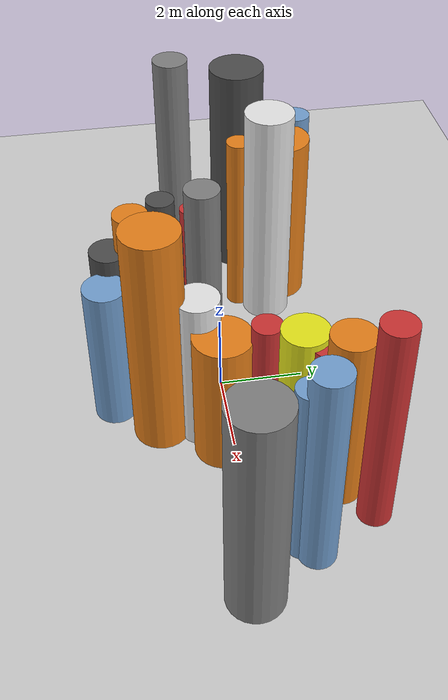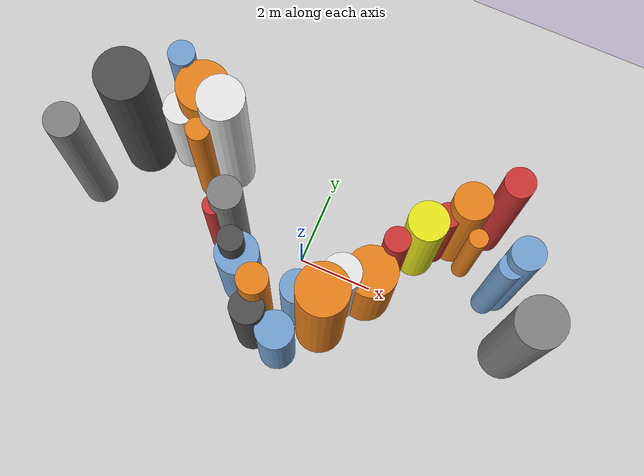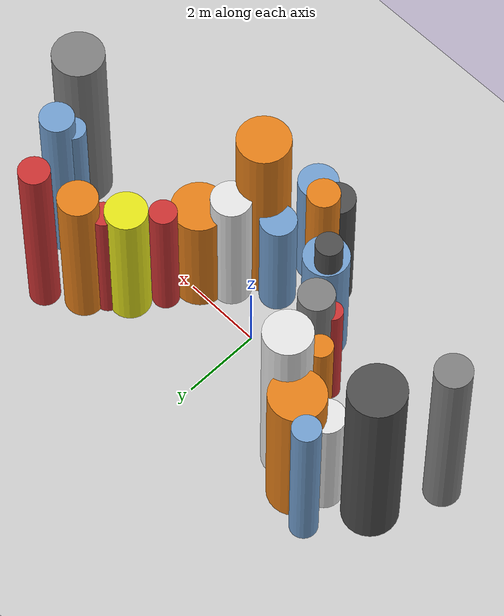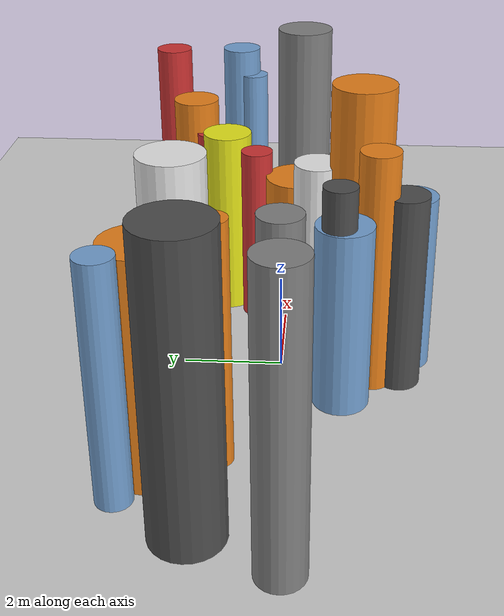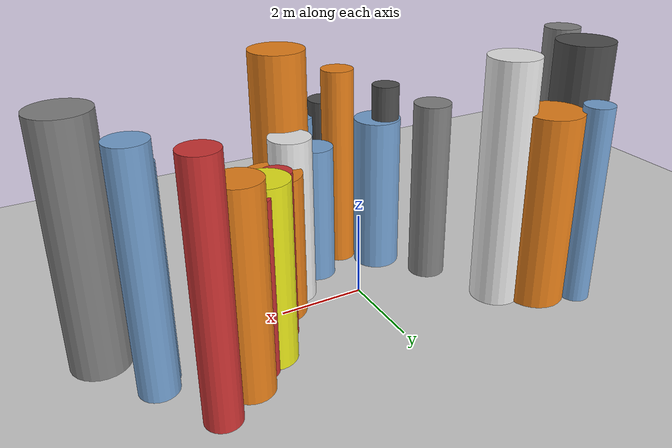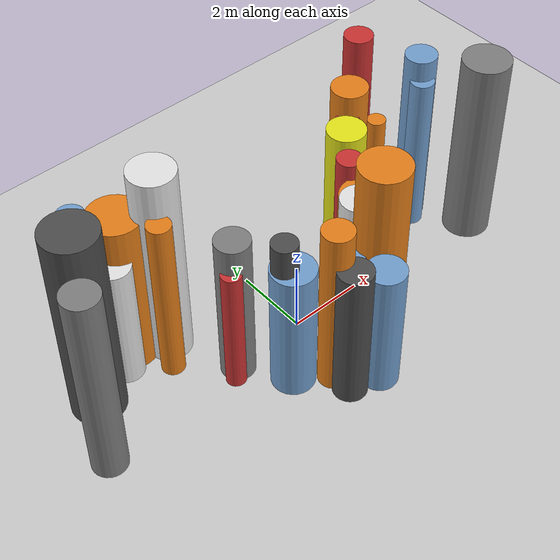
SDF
<?xml version='1.0'?>
<sdf version='1.6'>
  <world name='routeA_rl_v1__dense_recovery__rl_val__s_turn_multi_obstacle__000045'>
    <!-- Sun light -->
    <light name='sun' type='directional'>
      <cast_shadows>1</cast_shadows>
      <pose>0 0 10 0 0 0</pose>
      <diffuse>0.8 0.8 0.8 1</diffuse>
      <specular>0.2 0.2 0.2 1</specular>
      <attenuation>
        <range>1000</range>
        <constant>0.9</constant>
        <linear>0.01</linear>
        <quadratic>0.001</quadratic>
      </attenuation>
      <direction>-0.5 0.1 -0.9</direction>
    </light>

    <!-- Ground plane -->
    <model name='ground_plane'>
      <static>1</static>
      <link name='link'>
        <collision name='collision'>
          <geometry>
            <plane>
              <normal>0 0 1</normal>
              <size>100 100</size>
            </plane>
          </geometry>
          <surface>
            <contact>
              <collide_bitmask>65535</collide_bitmask>
              <ode/>
            </contact>
            <friction>
              <ode>
                <mu>100</mu>
                <mu2>50</mu2>
              </ode>
              <torsional><ode/></torsional>
            </friction>
            <bounce/>
          </surface>
          <max_contacts>10</max_contacts>
        </collision>
        <visual name='visual'>
          <cast_shadows>0</cast_shadows>
          <geometry>
            <plane>
              <normal>0 0 1</normal>
              <size>100 100</size>
            </plane>
          </geometry>
          <material>
            <script>
              <uri>file://media/materials/scripts/gazebo.material</uri>
              <n>Gazebo/Grey</n>
            </script>
          </material>
        </visual>
      </link>
    </model>

    <!-- Environment -->
    <magnetic_field>6e-06 2.3e-05 -4.2e-05</magnetic_field>
    <atmosphere type='adiabatic'/>
    <physics name='default_physics' default='0' type='ode'>
      <gravity>0 0 -9.8</gravity>
      <max_step_size>0.004</max_step_size>
      <real_time_factor>1</real_time_factor>
      <real_time_update_rate>250</real_time_update_rate>
    </physics>
    <scene>
      <ambient>0.4 0.4 0.4 1</ambient>
      <background>0.7 0.7 0.7 1</background>
      <shadows>1</shadows>
    </scene>
    <wind/>
    <spherical_coordinates>
      <surface_model>EARTH_WGS84</surface_model>
      <latitude_deg>0</latitude_deg>
      <longitude_deg>0</longitude_deg>
      <elevation>0</elevation>
      <heading_deg>0</heading_deg>
    </spherical_coordinates>

    <!-- ============ OBSTACLES (28) ============ -->
    <model name='s_turn_obs_0'>
      <static>1</static>
      <link name='link'>
        <visual name='visual'>
          <geometry>
            <cylinder>
              <radius>0.4491</radius>
              <length>5.6632</length>
            </cylinder>
          </geometry>
          <material>
            <script>
              <n>Gazebo/Grey</n>
              <uri>file://media/materials/scripts/gazebo.material</uri>
            </script>
            <ambient>0.5 0.5 0.5 1</ambient>
          </material>
        </visual>
        <collision name='collision'>
          <geometry>
            <cylinder>
              <radius>0.4491</radius>
              <length>5.6632</length>
            </cylinder>
          </geometry>
          <max_contacts>10</max_contacts>
          <surface>
            <contact><ode/></contact>
            <bounce/>
            <friction>
              <ode><mu>1</mu><mu2>1</mu2></ode>
              <torsional><ode/></torsional>
            </friction>
          </surface>
        </collision>
      </link>
      <pose>-6.0000 -0.3088 2.8316 0 0 0.0000</pose>
    </model>

    <model name='s_turn_obs_1'>
      <static>1</static>
      <link name='link'>
        <visual name='visual'>
          <geometry>
            <cylinder>
              <radius>0.6870</radius>
              <length>5.7342</length>
            </cylinder>
          </geometry>
          <material>
            <script>
              <n>Gazebo/DarkGrey</n>
              <uri>file://media/materials/scripts/gazebo.material</uri>
            </script>
            <ambient>0.3 0.3 0.3 1</ambient>
          </material>
        </visual>
        <collision name='collision'>
          <geometry>
            <cylinder>
              <radius>0.6870</radius>
              <length>5.7342</length>
            </cylinder>
          </geometry>
          <max_contacts>10</max_contacts>
          <surface>
            <contact><ode/></contact>
            <bounce/>
            <friction>
              <ode><mu>1</mu><mu2>1</mu2></ode>
              <torsional><ode/></torsional>
            </friction>
          </surface>
        </collision>
      </link>
      <pose>-5.2000 1.2667 2.8671 0 0 0.0000</pose>
    </model>

    <model name='s_turn_obs_2'>
      <static>1</static>
      <link name='link'>
        <visual name='visual'>
          <geometry>
            <cylinder>
              <radius>0.3449</radius>
              <length>4.7241</length>
            </cylinder>
          </geometry>
          <material>
            <script>
              <n>Gazebo/Blue</n>
              <uri>file://media/materials/scripts/gazebo.material</uri>
            </script>
            <ambient>0.447 0.624 0.812 1</ambient>
          </material>
        </visual>
        <collision name='collision'>
          <geometry>
            <cylinder>
              <radius>0.3449</radius>
              <length>4.7241</length>
            </cylinder>
          </geometry>
          <max_contacts>10</max_contacts>
          <surface>
            <contact><ode/></contact>
            <bounce/>
            <friction>
              <ode><mu>1</mu><mu2>1</mu2></ode>
              <torsional><ode/></torsional>
            </friction>
          </surface>
        </collision>
      </link>
      <pose>-4.4000 2.6431 2.3621 0 0 0.0000</pose>
    </model>

    <model name='s_turn_obs_3'>
      <static>1</static>
      <link name='link'>
        <visual name='visual'>
          <geometry>
            <cylinder>
              <radius>0.6859</radius>
              <length>4.5709</length>
            </cylinder>
          </geometry>
          <material>
            <script>
              <n>Gazebo/Orange</n>
              <uri>file://media/materials/scripts/gazebo.material</uri>
            </script>
            <ambient>0.9 0.5 0.1 1</ambient>
          </material>
        </visual>
        <collision name='collision'>
          <geometry>
            <cylinder>
              <radius>0.6859</radius>
              <length>4.5709</length>
            </cylinder>
          </geometry>
          <max_contacts>10</max_contacts>
          <surface>
            <contact><ode/></contact>
            <bounce/>
            <friction>
              <ode><mu>1</mu><mu2>1</mu2></ode>
              <torsional><ode/></torsional>
            </friction>
          </surface>
        </collision>
      </link>
      <pose>-3.6000 2.1249 2.2855 0 0 0.0000</pose>
    </model>

    <model name='s_turn_obs_4'>
      <static>1</static>
      <link name='link'>
        <visual name='visual'>
          <geometry>
            <cylinder>
              <radius>0.5905</radius>
              <length>5.7748</length>
            </cylinder>
          </geometry>
          <material>
            <script>
              <n>Gazebo/White</n>
              <uri>file://media/materials/scripts/gazebo.material</uri>
            </script>
            <ambient>0.9 0.9 0.9 1</ambient>
          </material>
        </visual>
        <collision name='collision'>
          <geometry>
            <cylinder>
              <radius>0.5905</radius>
              <length>5.7748</length>
            </cylinder>
          </geometry>
          <max_contacts>10</max_contacts>
          <surface>
            <contact><ode/></contact>
            <bounce/>
            <friction>
              <ode><mu>1</mu><mu2>1</mu2></ode>
              <torsional><ode/></torsional>
            </friction>
          </surface>
        </collision>
      </link>
      <pose>-2.8000 1.6444 2.8874 0 0 0.0000</pose>
    </model>

    <model name='s_turn_obs_5'>
      <static>1</static>
      <link name='link'>
        <visual name='visual'>
          <geometry>
            <cylinder>
              <radius>0.4421</radius>
              <length>4.3849</length>
            </cylinder>
          </geometry>
          <material>
            <script>
              <n>Gazebo/Grey</n>
              <uri>file://media/materials/scripts/gazebo.material</uri>
            </script>
            <ambient>0.5 0.5 0.5 1</ambient>
          </material>
        </visual>
        <collision name='collision'>
          <geometry>
            <cylinder>
              <radius>0.4421</radius>
              <length>4.3849</length>
            </cylinder>
          </geometry>
          <max_contacts>10</max_contacts>
          <surface>
            <contact><ode/></contact>
            <bounce/>
            <friction>
              <ode><mu>1</mu><mu2>1</mu2></ode>
              <torsional><ode/></torsional>
            </friction>
          </surface>
        </collision>
      </link>
      <pose>-2.0000 -0.0876 2.1924 0 0 0.0000</pose>
    </model>

    <model name='s_turn_obs_6'>
      <static>1</static>
      <link name='link'>
        <visual name='visual'>
          <geometry>
            <cylinder>
              <radius>0.5623</radius>
              <length>3.8150</length>
            </cylinder>
          </geometry>
          <material>
            <script>
              <n>Gazebo/Blue</n>
              <uri>file://media/materials/scripts/gazebo.material</uri>
            </script>
            <ambient>0.447 0.624 0.812 1</ambient>
          </material>
        </visual>
        <collision name='collision'>
          <geometry>
            <cylinder>
              <radius>0.5623</radius>
              <length>3.8150</length>
            </cylinder>
          </geometry>
          <max_contacts>10</max_contacts>
          <surface>
            <contact><ode/></contact>
            <bounce/>
            <friction>
              <ode><mu>1</mu><mu2>1</mu2></ode>
              <torsional><ode/></torsional>
            </friction>
          </surface>
        </collision>
      </link>
      <pose>-1.2000 -1.2262 1.9075 0 0 0.0000</pose>
    </model>

    <model name='s_turn_obs_7'>
      <static>1</static>
      <link name='link'>
        <visual name='visual'>
          <geometry>
            <cylinder>
              <radius>0.4388</radius>
              <length>4.0978</length>
            </cylinder>
          </geometry>
          <material>
            <script>
              <n>Gazebo/DarkGrey</n>
              <uri>file://media/materials/scripts/gazebo.material</uri>
            </script>
            <ambient>0.3 0.3 0.3 1</ambient>
          </material>
        </visual>
        <collision name='collision'>
          <geometry>
            <cylinder>
              <radius>0.4388</radius>
              <length>4.0978</length>
            </cylinder>
          </geometry>
          <max_contacts>10</max_contacts>
          <surface>
            <contact><ode/></contact>
            <bounce/>
            <friction>
              <ode><mu>1</mu><mu2>1</mu2></ode>
              <torsional><ode/></torsional>
            </friction>
          </surface>
        </collision>
      </link>
      <pose>-0.4000 -2.3877 2.0489 0 0 0.0000</pose>
    </model>

    <model name='s_turn_obs_8'>
      <static>1</static>
      <link name='link'>
        <visual name='visual'>
          <geometry>
            <cylinder>
              <radius>0.4900</radius>
              <length>3.7256</length>
            </cylinder>
          </geometry>
          <material>
            <script>
              <n>Gazebo/Blue</n>
              <uri>file://media/materials/scripts/gazebo.material</uri>
            </script>
            <ambient>0.447 0.624 0.812 1</ambient>
          </material>
        </visual>
        <collision name='collision'>
          <geometry>
            <cylinder>
              <radius>0.4900</radius>
              <length>3.7256</length>
            </cylinder>
          </geometry>
          <max_contacts>10</max_contacts>
          <surface>
            <contact><ode/></contact>
            <bounce/>
            <friction>
              <ode><mu>1</mu><mu2>1</mu2></ode>
              <torsional><ode/></torsional>
            </friction>
          </surface>
        </collision>
      </link>
      <pose>0.4000 -2.5725 1.8628 0 0 0.0000</pose>
    </model>

    <model name='s_turn_obs_9'>
      <static>1</static>
      <link name='link'>
        <visual name='visual'>
          <geometry>
            <cylinder>
              <radius>0.6507</radius>
              <length>5.7081</length>
            </cylinder>
          </geometry>
          <material>
            <script>
              <n>Gazebo/Orange</n>
              <uri>file://media/materials/scripts/gazebo.material</uri>
            </script>
            <ambient>0.9 0.5 0.1 1</ambient>
          </material>
        </visual>
        <collision name='collision'>
          <geometry>
            <cylinder>
              <radius>0.6507</radius>
              <length>5.7081</length>
            </cylinder>
          </geometry>
          <max_contacts>10</max_contacts>
          <surface>
            <contact><ode/></contact>
            <bounce/>
            <friction>
              <ode><mu>1</mu><mu2>1</mu2></ode>
              <torsional><ode/></torsional>
            </friction>
          </surface>
        </collision>
      </link>
      <pose>1.2000 -1.5659 2.8540 0 0 0.0000</pose>
    </model>

    <model name='s_turn_obs_10'>
      <static>1</static>
      <link name='link'>
        <visual name='visual'>
          <geometry>
            <cylinder>
              <radius>0.6715</radius>
              <length>3.4034</length>
            </cylinder>
          </geometry>
          <material>
            <script>
              <n>Gazebo/Orange</n>
              <uri>file://media/materials/scripts/gazebo.material</uri>
            </script>
            <ambient>0.9 0.5 0.1 1</ambient>
          </material>
        </visual>
        <collision name='collision'>
          <geometry>
            <cylinder>
              <radius>0.6715</radius>
              <length>3.4034</length>
            </cylinder>
          </geometry>
          <max_contacts>10</max_contacts>
          <surface>
            <contact><ode/></contact>
            <bounce/>
            <friction>
              <ode><mu>1</mu><mu2>1</mu2></ode>
              <torsional><ode/></torsional>
            </friction>
          </surface>
        </collision>
      </link>
      <pose>2.0000 -0.2412 1.7017 0 0 0.0000</pose>
    </model>

    <model name='s_turn_obs_11'>
      <static>1</static>
      <link name='link'>
        <visual name='visual'>
          <geometry>
            <cylinder>
              <radius>0.5185</radius>
              <length>4.0591</length>
            </cylinder>
          </geometry>
          <material>
            <script>
              <n>Gazebo/Yellow</n>
              <uri>file://media/materials/scripts/gazebo.material</uri>
            </script>
            <ambient>0.9 0.9 0.1 1</ambient>
          </material>
        </visual>
        <collision name='collision'>
          <geometry>
            <cylinder>
              <radius>0.5185</radius>
              <length>4.0591</length>
            </cylinder>
          </geometry>
          <max_contacts>10</max_contacts>
          <surface>
            <contact><ode/></contact>
            <bounce/>
            <friction>
              <ode><mu>1</mu><mu2>1</mu2></ode>
              <torsional><ode/></torsional>
            </friction>
          </surface>
        </collision>
      </link>
      <pose>2.8000 1.3195 2.0296 0 0 0.0000</pose>
    </model>

    <model name='s_turn_obs_12'>
      <static>1</static>
      <link name='link'>
        <visual name='visual'>
          <geometry>
            <cylinder>
              <radius>0.4899</radius>
              <length>4.5308</length>
            </cylinder>
          </geometry>
          <material>
            <script>
              <n>Gazebo/Orange</n>
              <uri>file://media/materials/scripts/gazebo.material</uri>
            </script>
            <ambient>0.9 0.5 0.1 1</ambient>
          </material>
        </visual>
        <collision name='collision'>
          <geometry>
            <cylinder>
              <radius>0.4899</radius>
              <length>4.5308</length>
            </cylinder>
          </geometry>
          <max_contacts>10</max_contacts>
          <surface>
            <contact><ode/></contact>
            <bounce/>
            <friction>
              <ode><mu>1</mu><mu2>1</mu2></ode>
              <torsional><ode/></torsional>
            </friction>
          </surface>
        </collision>
      </link>
      <pose>3.6000 2.0737 2.2654 0 0 0.0000</pose>
    </model>

    <model name='s_turn_obs_13'>
      <static>1</static>
      <link name='link'>
        <visual name='visual'>
          <geometry>
            <cylinder>
              <radius>0.3837</radius>
              <length>5.4337</length>
            </cylinder>
          </geometry>
          <material>
            <script>
              <n>Gazebo/Red</n>
              <uri>file://media/materials/scripts/gazebo.material</uri>
            </script>
            <ambient>0.8 0.2 0.2 1</ambient>
          </material>
        </visual>
        <collision name='collision'>
          <geometry>
            <cylinder>
              <radius>0.3837</radius>
              <length>5.4337</length>
            </cylinder>
          </geometry>
          <max_contacts>10</max_contacts>
          <surface>
            <contact><ode/></contact>
            <bounce/>
            <friction>
              <ode><mu>1</mu><mu2>1</mu2></ode>
              <torsional><ode/></torsional>
            </friction>
          </surface>
        </collision>
      </link>
      <pose>4.4000 2.6377 2.7168 0 0 0.0000</pose>
    </model>

    <model name='s_turn_obs_14'>
      <static>1</static>
      <link name='link'>
        <visual name='visual'>
          <geometry>
            <cylinder>
              <radius>0.4209</radius>
              <length>5.2471</length>
            </cylinder>
          </geometry>
          <material>
            <script>
              <n>Gazebo/Blue</n>
              <uri>file://media/materials/scripts/gazebo.material</uri>
            </script>
            <ambient>0.447 0.624 0.812 1</ambient>
          </material>
        </visual>
        <collision name='collision'>
          <geometry>
            <cylinder>
              <radius>0.4209</radius>
              <length>5.2471</length>
            </cylinder>
          </geometry>
          <max_contacts>10</max_contacts>
          <surface>
            <contact><ode/></contact>
            <bounce/>
            <friction>
              <ode><mu>1</mu><mu2>1</mu2></ode>
              <torsional><ode/></torsional>
            </friction>
          </surface>
        </collision>
      </link>
      <pose>5.2000 1.1944 2.6235 0 0 0.0000</pose>
    </model>

    <model name='s_turn_obs_15'>
      <static>1</static>
      <link name='link'>
        <visual name='visual'>
          <geometry>
            <cylinder>
              <radius>0.6354</radius>
              <length>5.5008</length>
            </cylinder>
          </geometry>
          <material>
            <script>
              <n>Gazebo/Grey</n>
              <uri>file://media/materials/scripts/gazebo.material</uri>
            </script>
            <ambient>0.5 0.5 0.5 1</ambient>
          </material>
        </visual>
        <collision name='collision'>
          <geometry>
            <cylinder>
              <radius>0.6354</radius>
              <length>5.5008</length>
            </cylinder>
          </geometry>
          <max_contacts>10</max_contacts>
          <surface>
            <contact><ode/></contact>
            <bounce/>
            <friction>
              <ode><mu>1</mu><mu2>1</mu2></ode>
              <torsional><ode/></torsional>
            </friction>
          </surface>
        </collision>
      </link>
      <pose>6.0000 -0.2451 2.7504 0 0 0.0000</pose>
    </model>

    <model name='s_turn_obs2_0'>
      <static>1</static>
      <link name='link'>
        <visual name='visual'>
          <geometry>
            <cylinder>
              <radius>0.3357</radius>
              <length>3.5267</length>
            </cylinder>
          </geometry>
          <material>
            <script>
              <n>Gazebo/Grey</n>
              <uri>file://media/materials/scripts/gazebo.material</uri>
            </script>
            <ambient>0.5 0.5 0.5 1</ambient>
          </material>
        </visual>
        <collision name='collision'>
          <geometry>
            <cylinder>
              <radius>0.3357</radius>
              <length>3.5267</length>
            </cylinder>
          </geometry>
          <max_contacts>10</max_contacts>
          <surface>
            <contact><ode/></contact>
            <bounce/>
            <friction>
              <ode><mu>1</mu><mu2>1</mu2></ode>
              <torsional><ode/></torsional>
            </friction>
          </surface>
        </collision>
      </link>
      <pose>-5.0000 1.2279 1.7634 0 0 0.0000</pose>
    </model>

    <model name='s_turn_obs2_1'>
      <static>1</static>
      <link name='link'>
        <visual name='visual'>
          <geometry>
            <cylinder>
              <radius>0.4550</radius>
              <length>3.6335</length>
            </cylinder>
          </geometry>
          <material>
            <script>
              <n>Gazebo/White</n>
              <uri>file://media/materials/scripts/gazebo.material</uri>
            </script>
            <ambient>0.9 0.9 0.9 1</ambient>
          </material>
        </visual>
        <collision name='collision'>
          <geometry>
            <cylinder>
              <radius>0.4550</radius>
              <length>3.6335</length>
            </cylinder>
          </geometry>
          <max_contacts>10</max_contacts>
          <surface>
            <contact><ode/></contact>
            <bounce/>
            <friction>
              <ode><mu>1</mu><mu2>1</mu2></ode>
              <torsional><ode/></torsional>
            </friction>
          </surface>
        </collision>
      </link>
      <pose>-4.0909 1.6661 1.8167 0 0 0.0000</pose>
    </model>

    <model name='s_turn_obs2_2'>
      <static>1</static>
      <link name='link'>
        <visual name='visual'>
          <geometry>
            <cylinder>
              <radius>0.3026</radius>
              <length>4.8310</length>
            </cylinder>
          </geometry>
          <material>
            <script>
              <n>Gazebo/Orange</n>
              <uri>file://media/materials/scripts/gazebo.material</uri>
            </script>
            <ambient>0.9 0.5 0.1 1</ambient>
          </material>
        </visual>
        <collision name='collision'>
          <geometry>
            <cylinder>
              <radius>0.3026</radius>
              <length>4.8310</length>
            </cylinder>
          </geometry>
          <max_contacts>10</max_contacts>
          <surface>
            <contact><ode/></contact>
            <bounce/>
            <friction>
              <ode><mu>1</mu><mu2>1</mu2></ode>
              <torsional><ode/></torsional>
            </friction>
          </surface>
        </collision>
      </link>
      <pose>-3.1818 0.9853 2.4155 0 0 0.0000</pose>
    </model>

    <model name='s_turn_obs2_3'>
      <static>1</static>
      <link name='link'>
        <visual name='visual'>
          <geometry>
            <cylinder>
              <radius>0.2588</radius>
              <length>3.6782</length>
            </cylinder>
          </geometry>
          <material>
            <script>
              <n>Gazebo/Red</n>
              <uri>file://media/materials/scripts/gazebo.material</uri>
            </script>
            <ambient>0.8 0.2 0.2 1</ambient>
          </material>
        </visual>
        <collision name='collision'>
          <geometry>
            <cylinder>
              <radius>0.2588</radius>
              <length>3.6782</length>
            </cylinder>
          </geometry>
          <max_contacts>10</max_contacts>
          <surface>
            <contact><ode/></contact>
            <bounce/>
            <friction>
              <ode><mu>1</mu><mu2>1</mu2></ode>
              <torsional><ode/></torsional>
            </friction>
          </surface>
        </collision>
      </link>
      <pose>-2.2727 -0.3452 1.8391 0 0 0.0000</pose>
    </model>

    <model name='s_turn_obs2_4'>
      <static>1</static>
      <link name='link'>
        <visual name='visual'>
          <geometry>
            <cylinder>
              <radius>0.3273</radius>
              <length>4.6463</length>
            </cylinder>
          </geometry>
          <material>
            <script>
              <n>Gazebo/DarkGrey</n>
              <uri>file://media/materials/scripts/gazebo.material</uri>
            </script>
            <ambient>0.3 0.3 0.3 1</ambient>
          </material>
        </visual>
        <collision name='collision'>
          <geometry>
            <cylinder>
              <radius>0.3273</radius>
              <length>4.6463</length>
            </cylinder>
          </geometry>
          <max_contacts>10</max_contacts>
          <surface>
            <contact><ode/></contact>
            <bounce/>
            <friction>
              <ode><mu>1</mu><mu2>1</mu2></ode>
              <torsional><ode/></torsional>
            </friction>
          </surface>
        </collision>
      </link>
      <pose>-1.3636 -1.1249 2.3232 0 0 0.0000</pose>
    </model>

    <model name='s_turn_obs2_5'>
      <static>1</static>
      <link name='link'>
        <visual name='visual'>
          <geometry>
            <cylinder>
              <radius>0.3954</radius>
              <length>4.9761</length>
            </cylinder>
          </geometry>
          <material>
            <script>
              <n>Gazebo/Orange</n>
              <uri>file://media/materials/scripts/gazebo.material</uri>
            </script>
            <ambient>0.9 0.5 0.1 1</ambient>
          </material>
        </visual>
        <collision name='collision'>
          <geometry>
            <cylinder>
              <radius>0.3954</radius>
              <length>4.9761</length>
            </cylinder>
          </geometry>
          <max_contacts>10</max_contacts>
          <surface>
            <contact><ode/></contact>
            <bounce/>
            <friction>
              <ode><mu>1</mu><mu2>1</mu2></ode>
              <torsional><ode/></torsional>
            </friction>
          </surface>
        </collision>
      </link>
      <pose>-0.4545 -1.8544 2.4881 0 0 0.0000</pose>
    </model>

    <model name='s_turn_obs2_6'>
      <static>1</static>
      <link name='link'>
        <visual name='visual'>
          <geometry>
            <cylinder>
              <radius>0.4458</radius>
              <length>3.3656</length>
            </cylinder>
          </geometry>
          <material>
            <script>
              <n>Gazebo/Blue</n>
              <uri>file://media/materials/scripts/gazebo.material</uri>
            </script>
            <ambient>0.447 0.624 0.812 1</ambient>
          </material>
        </visual>
        <collision name='collision'>
          <geometry>
            <cylinder>
              <radius>0.4458</radius>
              <length>3.3656</length>
            </cylinder>
          </geometry>
          <max_contacts>10</max_contacts>
          <surface>
            <contact><ode/></contact>
            <bounce/>
            <friction>
              <ode><mu>1</mu><mu2>1</mu2></ode>
              <torsional><ode/></torsional>
            </friction>
          </surface>
        </collision>
      </link>
      <pose>0.4545 -1.3181 1.6828 0 0 0.0000</pose>
    </model>

    <model name='s_turn_obs2_7'>
      <static>1</static>
      <link name='link'>
        <visual name='visual'>
          <geometry>
            <cylinder>
              <radius>0.4952</radius>
              <length>3.9820</length>
            </cylinder>
          </geometry>
          <material>
            <script>
              <n>Gazebo/White</n>
              <uri>file://media/materials/scripts/gazebo.material</uri>
            </script>
            <ambient>0.9 0.9 0.9 1</ambient>
          </material>
        </visual>
        <collision name='collision'>
          <geometry>
            <cylinder>
              <radius>0.4952</radius>
              <length>3.9820</length>
            </cylinder>
          </geometry>
          <max_contacts>10</max_contacts>
          <surface>
            <contact><ode/></contact>
            <bounce/>
            <friction>
              <ode><mu>1</mu><mu2>1</mu2></ode>
              <torsional><ode/></torsional>
            </friction>
          </surface>
        </collision>
      </link>
      <pose>1.3636 -0.6749 1.9910 0 0 0.0000</pose>
    </model>

    <model name='s_turn_obs2_8'>
      <static>1</static>
      <link name='link'>
        <visual name='visual'>
          <geometry>
            <cylinder>
              <radius>0.3368</radius>
              <length>3.8450</length>
            </cylinder>
          </geometry>
          <material>
            <script>
              <n>Gazebo/Red</n>
              <uri>file://media/materials/scripts/gazebo.material</uri>
            </script>
            <ambient>0.8 0.2 0.2 1</ambient>
          </material>
        </visual>
        <collision name='collision'>
          <geometry>
            <cylinder>
              <radius>0.3368</radius>
              <length>3.8450</length>
            </cylinder>
          </geometry>
          <max_contacts>10</max_contacts>
          <surface>
            <contact><ode/></contact>
            <bounce/>
            <friction>
              <ode><mu>1</mu><mu2>1</mu2></ode>
              <torsional><ode/></torsional>
            </friction>
          </surface>
        </collision>
      </link>
      <pose>2.2727 0.6439 1.9225 0 0 0.0000</pose>
    </model>

    <model name='s_turn_obs2_9'>
      <static>1</static>
      <link name='link'>
        <visual name='visual'>
          <geometry>
            <cylinder>
              <radius>0.3260</radius>
              <length>3.8978</length>
            </cylinder>
          </geometry>
          <material>
            <script>
              <n>Gazebo/Red</n>
              <uri>file://media/materials/scripts/gazebo.material</uri>
            </script>
            <ambient>0.8 0.2 0.2 1</ambient>
          </material>
        </visual>
        <collision name='collision'>
          <geometry>
            <cylinder>
              <radius>0.3260</radius>
              <length>3.8978</length>
            </cylinder>
          </geometry>
          <max_contacts>10</max_contacts>
          <surface>
            <contact><ode/></contact>
            <bounce/>
            <friction>
              <ode><mu>1</mu><mu2>1</mu2></ode>
              <torsional><ode/></torsional>
            </friction>
          </surface>
        </collision>
      </link>
      <pose>3.1818 1.6925 1.9489 0 0 0.0000</pose>
    </model>

    <model name='s_turn_obs2_10'>
      <static>1</static>
      <link name='link'>
        <visual name='visual'>
          <geometry>
            <cylinder>
              <radius>0.2469</radius>
              <length>3.5319</length>
            </cylinder>
          </geometry>
          <material>
            <script>
              <n>Gazebo/Orange</n>
              <uri>file://media/materials/scripts/gazebo.material</uri>
            </script>
            <ambient>0.9 0.5 0.1 1</ambient>
          </material>
        </visual>
        <collision name='collision'>
          <geometry>
            <cylinder>
              <radius>0.2469</radius>
              <length>3.5319</length>
            </cylinder>
          </geometry>
          <max_contacts>10</max_contacts>
          <surface>
            <contact><ode/></contact>
            <bounce/>
            <friction>
              <ode><mu>1</mu><mu2>1</mu2></ode>
              <torsional><ode/></torsional>
            </friction>
          </surface>
        </collision>
      </link>
      <pose>4.0909 1.5485 1.7660 0 0 0.0000</pose>
    </model>

    <model name='s_turn_obs2_11'>
      <static>1</static>
      <link name='link'>
        <visual name='visual'>
          <geometry>
            <cylinder>
              <radius>0.3157</radius>
              <length>4.6833</length>
            </cylinder>
          </geometry>
          <material>
            <script>
              <n>Gazebo/Blue</n>
              <uri>file://media/materials/scripts/gazebo.material</uri>
            </script>
            <ambient>0.447 0.624 0.812 1</ambient>
          </material>
        </visual>
        <collision name='collision'>
          <geometry>
            <cylinder>
              <radius>0.3157</radius>
              <length>4.6833</length>
            </cylinder>
          </geometry>
          <max_contacts>10</max_contacts>
          <surface>
            <contact><ode/></contact>
            <bounce/>
            <friction>
              <ode><mu>1</mu><mu2>1</mu2></ode>
              <torsional><ode/></torsional>
            </friction>
          </surface>
        </collision>
      </link>
      <pose>5.0000 0.9043 2.3416 0 0 0.0000</pose>
    </model>

    <!-- GUI camera -->
    <gui fullscreen='0'>
      <camera name='user_camera'>
        <pose>-15 0 18 0 0.85 0.15</pose>
        <view_controller>orbit</view_controller>
        <projection_type>perspective</projection_type>
      </camera>
    </gui>
  </world>
</sdf>
